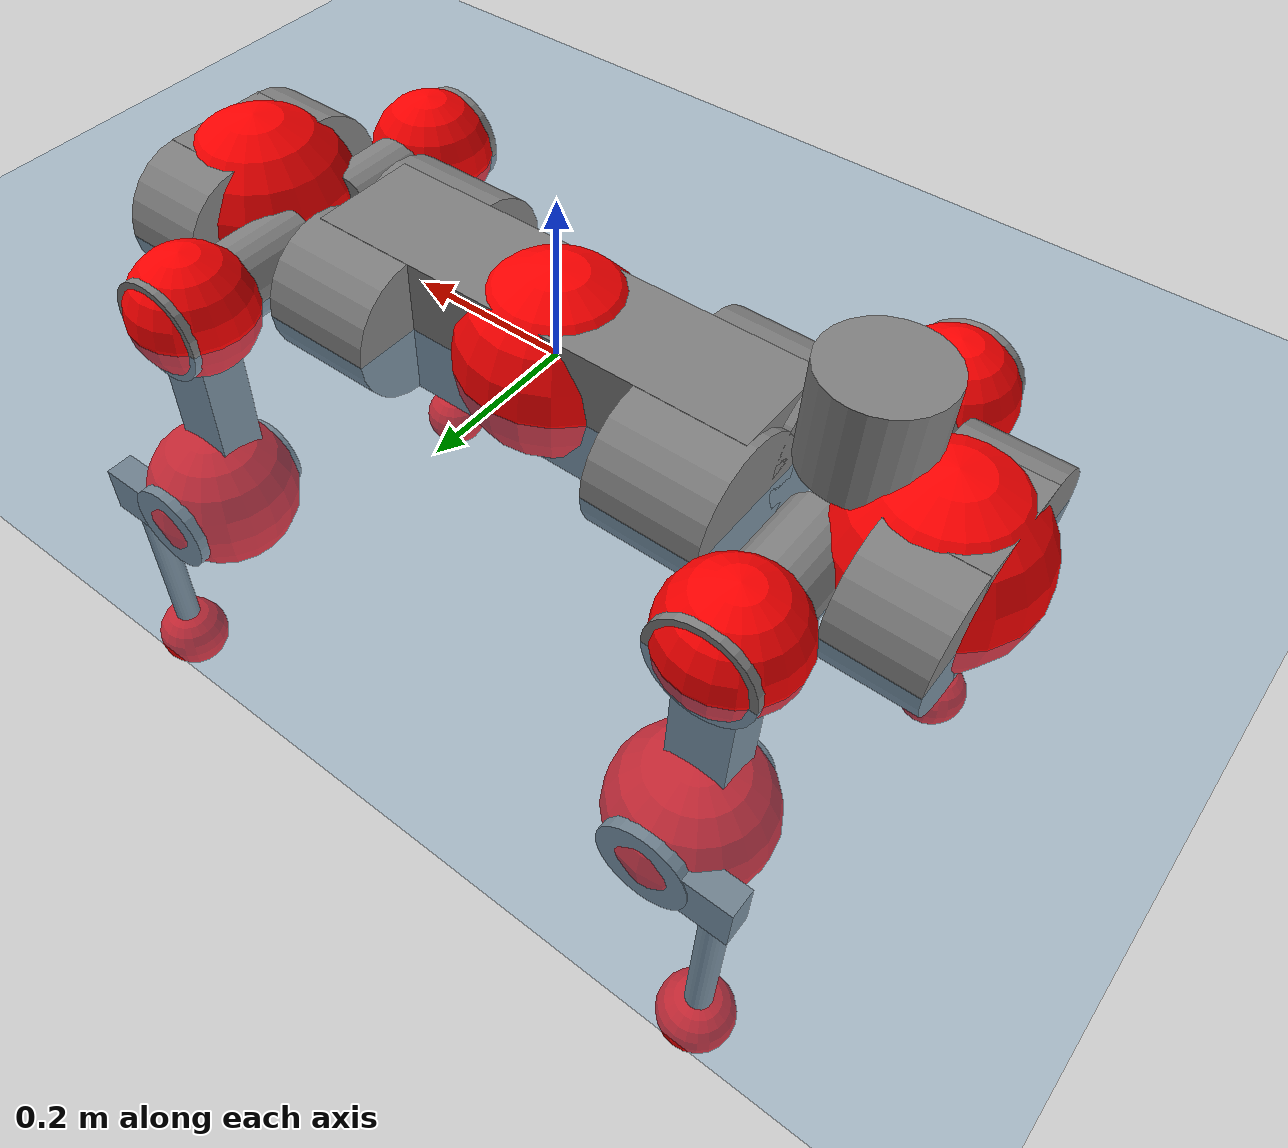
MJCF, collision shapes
<mujoco model="anymal_c">
  <compiler angle="radian" assetdir="assets" balanceinertia="true" inertiafromgeom="false"/>

  <option timestep="0.005" density="1.2" viscosity="2e-05"/>

  <size nkey="1"/>

  <visual>
    <quality shadowsize="8192"/>
    <map shadowclip="0.5"/>
  </visual>

  <default>
    <default class="/">
      <material specular="0" shininess="0.25"/>
      <geom contype="0" conaffinity="0" group="1" solref="-1000 -80"/>
      <site size="0.01 0.005 0.005" group="5"/>
      <general forcelimited="true" forcerange="-80 80" biastype="affine" gainprm="80" biasprm="0 -80 -2"/>
      <default class="anymal_c">
        <joint armature="0.01" damping="0.01" frictionloss="0.1"/>
        <default class="visual">
          <geom type="mesh" group="2"/>
          <default class="visual_zflip"/>
        </default>
        <default class="collision">
          <geom type="cylinder" group="3"/>
          <default class="foot">
            <geom size="0.03 0 0" type="sphere" condim="6" priority="1" friction="0.8 0.02 0.01" solimp="0.015 1 0.03"/>
          </default>
        </default>
      </default>
      <default class="reward_collision_sphere">
        <geom group="5" rgba="1 0 0 1"/>
      </default>
    </default>
  </default>

  <asset>
    <texture type="skybox" colorspace="auto" name="//unnamed_texture_0" builtin="gradient" rgb1="0.95 0.95 0.95" rgb2="0.95 0.95 0.95" width="100" height="600"/>
    <texture type="2d" colorspace="auto" name="texplane" builtin="checker" rgb1="0.345 0.575 0.748" rgb2="0.345 0.575 0.748" markrgb="1 1 1" width="512" height="512"/>
    <texture type="2d" colorspace="linear" name="base" file="base.png"/>
    <texture type="2d" colorspace="linear" name="top_shell" file="top_shell.png"/>
    <texture type="2d" colorspace="linear" name="bottom_shell" file="bottom_shell.png"/>
    <texture type="2d" colorspace="linear" name="remote" file="remote.png"/>
    <texture type="2d" colorspace="linear" name="hatch" file="hatch.png"/>
    <texture type="2d" colorspace="linear" name="handle" file="handle.png"/>
    <texture type="2d" colorspace="linear" name="face" file="face.png"/>
    <texture type="2d" colorspace="linear" name="battery" file="battery.png"/>
    <texture type="2d" colorspace="linear" name="lidar_cage" file="lidar_cage.png"/>
    <texture type="2d" colorspace="linear" name="depth_camera" file="depth_camera.png"/>
    <texture type="2d" colorspace="linear" name="wide_angle_camera" file="wide_angle_camera.png"/>
    <texture type="2d" colorspace="linear" name="lidar" file="lidar.png"/>
    <texture type="2d" colorspace="linear" name="drive" file="drive.png"/>
    <texture type="2d" colorspace="linear" name="hip_l" file="hip_l.png"/>
    <texture type="2d" colorspace="linear" name="shank_l" file="shank_l.png"/>
    <texture type="2d" colorspace="linear" name="foot" file="foot.png"/>
    <texture type="2d" colorspace="linear" name="thigh" file="thigh.png"/>
    <texture type="2d" colorspace="linear" name="shank_r" file="shank_r.png"/>
    <texture type="2d" colorspace="linear" name="hip_r" file="hip_r.png"/>
    <material name="MatPlane" class="/" texture="texplane" texuniform="true" texrepeat="2 2" specular="0.9" shininess="0.5"/>
    <material name="black_plastic" class="/" rgba="0.007 0.007 0.007 1"/>
    <material name="green" class="/" rgba="0.052 0.178 0.033 1"/>
    <material name="red" class="/" rgba="0.178 0.006 0.005 1"/>
    <material name="yellow" class="/" rgba="0.178 0.119 0.006 1"/>
    <material name="lwl" class="/" rgba="0.8 0.8 0.8 1"/>
    <material name="base" class="/" texture="base"/>
    <material name="top_shell" class="/" texture="top_shell"/>
    <material name="bottom_shell" class="/" texture="bottom_shell"/>
    <material name="hip_l" class="/" texture="hip_l"/>
    <material name="thigh" class="/" texture="thigh"/>
    <material name="shank_l" class="/" texture="shank_l"/>
    <material name="foot" class="/" texture="foot"/>
    <material name="hip_r" class="/" texture="hip_r"/>
    <material name="shank" class="/" texture="shank_r"/>
    <material name="hatch" class="/" texture="hatch"/>
    <material name="remote" class="/" texture="remote"/>
    <material name="handle" class="/" texture="handle"/>
    <material name="face" class="/" texture="face"/>
    <material name="depth_camera" class="/" texture="depth_camera"/>
    <material name="wide_angle_camera" class="/" texture="wide_angle_camera"/>
    <material name="battery" class="/" texture="battery"/>
    <material name="lidar_cage" class="/" texture="lidar_cage"/>
    <material name="lidar" class="/" texture="lidar"/>
    <material name="drive" class="/" texture="drive"/>
    <mesh name="base_0" class="/" file="base_0.obj"/>
    <mesh name="base_1" class="/" file="base_1.obj"/>
    <mesh name="base_2" class="/" file="base_2.obj"/>
    <mesh name="base_3" class="/" file="base_3.obj"/>
    <mesh name="base_4" class="/" file="base_4.obj"/>
    <mesh name="base_5" class="/" file="base_5.obj"/>
    <mesh name="top_shell" class="/" file="top_shell.obj"/>
    <mesh name="bottom_shell" class="/" file="bottom_shell.obj"/>
    <mesh name="remote" class="/" file="remote.obj"/>
    <mesh name="handle" class="/" file="handle.obj"/>
    <mesh name="face" class="/" file="face.obj"/>
    <mesh name="wide_angle_camera" class="/" file="wide_angle_camera.obj"/>
    <mesh name="depth_camera" class="/" file="depth_camera.obj"/>
    <mesh name="battery" class="/" file="battery.obj"/>
    <mesh name="lidar_cage" class="/" file="lidar_cage.obj"/>
    <mesh name="lidar" class="/" file="lidar.obj"/>
    <mesh name="drive" class="/" file="drive.obj"/>
    <mesh name="hip_l" class="/" file="hip_l.obj"/>
    <mesh name="thigh" class="/" file="thigh.obj"/>
    <mesh name="shank_l" class="/" file="shank_l.obj"/>
    <mesh name="foot" class="/" file="foot.obj"/>
    <mesh name="hip_r" class="/" file="hip_r.obj"/>
    <mesh name="hatch" class="/" file="hatch.obj"/>
    <mesh name="shank_r" class="/" file="shank_r.obj"/>
  </asset>

  <worldbody>
    <geom name="floor" class="/" size="100 100 0.125" type="plane" group="0" material="MatPlane"/>
    <light name="toplight_shadow" class="/" pos="0 0 5" dir="0.0990148 0.0990148 -0.990148" type="directional" ambient="0.04 0.04 0.04" diffuse="0.55 0.55 0.55" specular="0.12 0.12 0.12"/>
    <light name="toplight_fill" class="/" pos="0 0 5" dir="0.0990148 0.0990148 -0.990148" type="directional" castshadow="false" ambient="0.04 0.04 0.04" diffuse="0.3 0.3 0.3" specular="0.08 0.08 0.08"/>
    <body name="trunk" childclass="anymal_c" pos="5.72424e-05 4.06253e-05 0.000860323" quat="1 -1.95032e-06 -1.51634e-06 3.46569e-05">
      <inertial pos="0.0022185 -1.53994e-05 0.0480419" quat="0.500083 0.499996 0.500185 0.499736" mass="18.8395" diaginertia="0.7682 0.471053 0.211529"/>
      <joint name="//unnamed_joint_0" type="free" armature="0" damping="0" frictionloss="0"/>
      <geom name="//unnamed_geom_1" class="visual" material="green" mesh="base_0"/>
      <geom name="//unnamed_geom_2" class="visual" material="yellow" mesh="base_1"/>
      <geom name="//unnamed_geom_3" class="visual" material="red" mesh="base_2"/>
      <geom name="//unnamed_geom_4" class="visual" material="black_plastic" mesh="base_3"/>
      <geom name="//unnamed_geom_5" class="visual" material="lwl" mesh="base_4"/>
      <geom name="//unnamed_geom_6" class="visual" material="base" mesh="base_5"/>
      <geom name="trunk_1" class="collision" size="0.287531 0.0694041 0.0892338" type="box"/>
      <geom name="trunk_2" class="collision" size="0.0892338 0.0718828" pos="0.225514 0.0661298 0" quat="0.707107 0 0.707107 0"/>
      <geom name="trunk_3" class="collision" size="0.0892338 0.0718828" pos="-0.225514 0.0661298 0" quat="0.707107 0 0.707107 0"/>
      <geom name="trunk_4" class="collision" size="0.0892338 0.0718828" pos="0.225514 -0.0661298 0" quat="0.707107 0 0.707107 0"/>
      <geom name="trunk_5" class="collision" size="0.0892338 0.0718828" pos="-0.225514 -0.0661298 0" quat="0.707107 0 0.707107 0"/>
      <geom name="//unnamed_geom_12" class="visual" material="top_shell" mesh="top_shell"/>
      <geom name="//unnamed_geom_13" class="visual" material="bottom_shell" mesh="bottom_shell"/>
      <geom name="//unnamed_geom_14" class="visual" material="remote" mesh="remote"/>
      <geom name="//unnamed_geom_15" class="visual" material="handle" mesh="handle"/>
      <geom name="//unnamed_geom_16" class="visual" pos="0.429773 0 0" quat="1 0 0 0" material="face" mesh="face"/>
      <geom name="trunk_6" class="collision" size="0.0545318 0.0694041 0.0892338" pos="0.486799 0 0" type="box"/>
      <geom name="//unnamed_geom_18" class="collision" size="0.0892338 0.0545318" pos="0.486799 0.0661298 0" quat="0.707107 0 0.707107 0"/>
      <geom name="//unnamed_geom_19" class="collision" size="0.0892338 0.0545318" pos="0.486799 -0.0661298 0" quat="0.707107 0 0.707107 0"/>
      <geom name="//unnamed_geom_20" class="visual" pos="0.478658 0 -0.0286588" quat="0.965926 0 0.258819 0" material="depth_camera" mesh="depth_camera"/>
      <geom name="//unnamed_geom_21" class="visual" pos="0.531902 0 0.0148638" material="wide_angle_camera" mesh="wide_angle_camera"/>
      <geom name="//unnamed_geom_22" class="visual_zflip" pos="-0.429773 0 0" quat="0 0 0 1" material="face" mesh="face"/>
      <geom name="trunk_7" class="collision" size="0.0545318 0.0694041 0.0892338" pos="-0.486799 0 0" quat="0 0 0 1" type="box"/>
      <geom name="//unnamed_geom_24" class="collision" size="0.0892338 0.0545318" pos="-0.486799 -0.0661298 0" quat="0 -0.707107 0 0.707107"/>
      <geom name="//unnamed_geom_25" class="collision" size="0.0892338 0.0545318" pos="-0.486799 0.0661298 0" quat="0 -0.707107 0 0.707107"/>
      <geom name="//unnamed_geom_26" class="visual" pos="-0.478658 0 -0.0286588" quat="0 -0.258819 0 0.965926" material="depth_camera" mesh="depth_camera"/>
      <geom name="//unnamed_geom_27" class="visual_zflip" pos="-0.531902 0 0.0148638" quat="0 0 0 1" material="wide_angle_camera" mesh="wide_angle_camera"/>
      <geom name="//unnamed_geom_28" class="visual" material="battery" mesh="battery"/>
      <geom name="//unnamed_geom_29" class="visual" pos="0 0.0710218 0.0291778" quat="0.683013 -0.183013 0.183013 0.683013" material="depth_camera" mesh="depth_camera"/>
      <geom name="//unnamed_geom_30" class="visual" pos="0 -0.0710218 0.0291778" quat="0.683013 0.183013 0.183013 -0.683013" material="depth_camera" mesh="depth_camera"/>
      <geom name="//unnamed_geom_31" class="visual" pos="-0.377412 0 0.0729783" quat="1 0 0 0" material="lidar_cage" mesh="lidar_cage"/>
      <geom name="trunk_8" class="collision" size="0.0694041 0.0594892" pos="-0.377412 0 0.132553"/>
      <geom name="//unnamed_geom_33" class="visual" pos="-0.377412 -3.61974e-05 0.141191" quat="0.707107 0 0 -0.707107" material="lidar" mesh="lidar"/>
      <geom name="//unnamed_geom_34" class="visual" pos="0.31095 0.0982671 -8.31308e-10" quat="0.258819 0.965926 0 0" material="drive" mesh="drive"/>
      <geom name="//unnamed_geom_35" class="visual" pos="0.31095 -0.0982671 8.31308e-10" quat="0.258819 -0.965926 0 0" material="drive" mesh="drive"/>
      <geom name="//unnamed_geom_36" class="visual" pos="-0.31095 0.0982671 8.31308e-10" quat="0 0 0.965926 -0.258819" material="drive" mesh="drive"/>
      <geom name="//unnamed_geom_37" class="visual" pos="-0.31095 -0.0982671 -8.31308e-10" quat="0 0 -0.965926 -0.258819" material="drive" mesh="drive"/>
      <geom name="//unnamed_geom_38" class="visual" pos="0.120274 0 0.0724819" quat="1 0 0 0" material="hatch" mesh="hatch"/>
      <geom name="//unnamed_geom_39" class="reward_collision_sphere" size="0.118978"/>
      <geom name="//unnamed_geom_40" class="reward_collision_sphere" size="0.118978" pos="0.466581 0 0"/>
      <geom name="//unnamed_geom_41" class="reward_collision_sphere" size="0.118978" pos="-0.466581 0 0"/>
      <site name="imu" pos="0.258819 0.0114826 0.0460916" size="0.00991487"/>
      <camera name="track" pos="0 -1.88942 0" quat="0.707107 0.707107 0 0" mode="trackcom"/>
      <camera name="ego_camera" pos="0.466581 0 -0.0397161" quat="-0.5 -0.5 0.5 0.5"/>
      <body name="LF_HIP" pos="0.311146 0.098867 -3.93529e-06" quat="0.258881 0.965909 0.000183247 1.8782e-05">
        <inertial pos="0.0592386 -0.0143394 -0.00747655" quat="-0.127582 0.709745 -0.135156 0.679498" mass="2.6811" diaginertia="0.0069793 0.00371339 0.00312933"/>
        <joint name="LF_HAA" pos="0 0 0" axis="0.999999 0.00129078 -0.000853626" range="-0.714554 0.491859" armature="0.00953026" damping="0.00700406" frictionloss="0.101816"/>
        <geom name="//unnamed_geom_42" class="visual" pos="0 -4.89021e-05 8.03213e-06" quat="0.258819 -0.965926 0 0" material="hip_l" mesh="hip_l"/>
        <geom name="//unnamed_geom_43" class="visual" pos="0.0621071 -0.07406 -0.043115" quat="0.183013 -0.683013 0.683013 0.183013" material="drive" mesh="drive"/>
        <geom name="//unnamed_geom_44" class="collision" size="0.0495743 0.0694041" pos="0.0621071 -0.0112986 -0.00685599" quat="-0.353553 -0.612372 0.612372 -0.353553"/>
        <body name="LF_THIGH" pos="0.0624777 -0.0689335 -0.0420196" quat="0.183018 -0.682986 0.683033 0.18303">
          <inertial pos="0.0319941 0.000214352 -0.243185" quat="0.993139 -0.00539456 -0.0806391 0.0845211" mass="3.02043" diaginertia="0.0363788 0.0223614 0.00403048"/>
          <joint name="LF_HFE" pos="0 0 0" axis="1 -2.95392e-05 0.000183802" stiffness="0.0062165" range="-3.12592 3.13301" armature="0.0101455" damping="0.00788772" frictionloss="0.0979813"/>
          <geom name="//unnamed_geom_45" class="visual" pos="0.00183312 2.88858e-06 0" quat="0.707107 0 0 -0.707107" material="thigh" mesh="thigh"/>
          <geom name="//unnamed_geom_46" class="collision" size="0.0644466 0.0396595" pos="0.0414738 0 0" quat="0.5 0.5 -0.5 -0.5"/>
          <geom name="//unnamed_geom_47" class="collision" size="0.0371808 0.0297446 0.140111" pos="0.0311054 0 -0.140311" quat="0.707107 0 0 -0.707107" type="box"/>
          <geom name="//unnamed_geom_48" class="visual" pos="0.103996 0 -0.282977" quat="1 0 0 0" material="drive" mesh="drive"/>
          <geom name="//unnamed_geom_49" class="collision" size="0.0495743 0.0694041" pos="0.0314164 0 -0.282977" quat="0.707107 0 0.707107 0"/>
          <geom name="//unnamed_geom_50" class="reward_collision_sphere" size="0.0793189" pos="0.0259212 0 0"/>
          <body name="LF_SHANK" pos="0.103835 -0.0011368 -0.28392" quat="1 9.44661e-06 3.44974e-05 1.384e-05">
            <inertial pos="0.00592027 -0.0577927 -0.0801301" quat="0.992939 -0.115899 -0.000751513 -0.0252647" mass="0.578732" diaginertia="0.0121841 0.00698395 0.00108703"/>
            <joint name="LF_KFE" pos="0 0 0" axis="0.999991 -0.00429699 0.000252816" range="-3.14148 3.13322" armature="0.00992338" damping="0.00602402" frictionloss="0.103379"/>
            <geom name="//unnamed_geom_51" class="visual" pos="0.000597742 0.00318719 0" quat="0.707107 0 0 -0.707107" material="shank_l" mesh="shank_l"/>
            <geom name="LF_kfe_act" class="collision" size="0.0594892 0.0198297" pos="0.0207369 0 0" quat="0.5 0.5 -0.5 -0.5"/>
            <geom name="//unnamed_geom_53" class="collision" size="0.0570095 0.0334627 0.0188382" pos="0.0207369 -0.0543199 0" quat="0.5 0.5 -0.5 -0.5" type="box"/>
            <geom name="//unnamed_geom_54" class="visual" pos="0.0135307 -0.0820602 -0.335571" quat="0.382683 0 0 -0.92388" material="foot" mesh="foot"/>
            <geom name="LF_calf" class="collision" size="0.017351 0.140049" pos="0.0135308 -0.0830874 -0.167786" quat="0.707107 0 0 -0.707107"/>
            <geom name="LF_foot" class="foot" size="0.0304909" pos="0.0135308 -0.0830874 -0.313231" quat="0.707107 0 0 -0.707107"/>
            <geom name="//unnamed_geom_57" class="reward_collision_sphere" size="0.0991487" pos="-0.0518423 0 0"/>
            <geom name="//unnamed_geom_58" class="reward_collision_sphere" size="0.0495743" pos="0.0135308 -0.0830874 -0.313231"/>
            <site name="LF_foot" class="foot" pos="0.0135308 -0.0830874 -0.313231" quat="0.707107 0 0 -0.707107" size="0.00991487"/>
          </body>
        </body>
      </body>
      <body name="RF_HIP" pos="0.311448 -0.0980484 0.000718628" quat="0.25872 -0.965952 -0.000242166 -0.000302166">
        <inertial pos="0.0590046 0.0150798 -0.00861695" quat="0.135243 0.67881 0.128335 0.710251" mass="2.73002" diaginertia="0.00706632 0.00373779 0.00317668"/>
        <joint name="RF_HAA" pos="0 0 0" axis="0.999999 0.000599222 0.000822229" range="-0.507855 0.723884" armature="0.00984099" damping="0.0122452" frictionloss="0.103482"/>
        <geom name="//unnamed_geom_59" class="visual" pos="0 4.89017e-05 8.03211e-06" quat="0.258819 0.965926 0 0" material="hip_r" mesh="hip_r"/>
        <geom name="//unnamed_geom_60" class="visual" pos="0.0621071 0.07406 -0.043115" quat="0.183013 0.683013 0.683013 -0.183013" material="drive" mesh="drive"/>
        <geom name="//unnamed_geom_61" class="collision" size="0.0495743 0.0694041" pos="0.0621071 0.0112986 -0.00685599" quat="-0.353553 0.612372 0.612372 0.353553"/>
        <body name="RF_THIGH" pos="0.0629403 0.0679714 -0.0419967" quat="0.183007 0.683013 0.68301 -0.183025">
          <inertial pos="0.0321378 -0.000108827 -0.243759" quat="0.992805 -0.00578024 -0.0805957 0.0883739" mass="3.03439" diaginertia="0.0365235 0.0227236 0.00408553"/>
          <joint name="RF_HFE" pos="0 0 0" axis="0.999999 -0.00128825 0.000635262" stiffness="0.00577354" range="-3.13018 3.14052" armature="0.0100166" damping="0.0109428" frictionloss="0.0967549"/>
          <geom name="//unnamed_geom_62" class="visual" pos="0.00183312 2.88858e-06 0" quat="0.707107 0 0 -0.707107" material="thigh" mesh="thigh"/>
          <geom name="//unnamed_geom_63" class="collision" size="0.0644466 0.0396595" pos="0.0414738 0 0" quat="0.5 0.5 0.5 0.5"/>
          <geom name="//unnamed_geom_64" class="collision" size="0.0371808 0.0297446 0.140111" pos="0.0311054 0 -0.140311" quat="0.707107 0 0 0.707107" type="box"/>
          <geom name="//unnamed_geom_65" class="visual" pos="0.103996 0 -0.282977" quat="1 0 0 0" material="drive" mesh="drive"/>
          <geom name="//unnamed_geom_66" class="collision" size="0.0495743 0.0694041" pos="0.0314164 0 -0.282977" quat="0.707107 0 0.707107 0"/>
          <geom name="//unnamed_geom_67" class="reward_collision_sphere" size="0.0793189" pos="0.0259212 0 0"/>
          <body name="RF_SHANK" pos="0.103681 0.000611485 -0.283148" quat="1 -0.000122273 2.44584e-05 3.84147e-05">
            <inertial pos="0.00577303 0.0574227 -0.0794681" quat="0.992893 0.115801 -0.00133552 0.0274334" mass="0.56702" diaginertia="0.0120333 0.00692639 0.00107594"/>
            <joint name="RF_KFE" pos="0 0 0" axis="0.999978 0.00496118 -0.00429281" stiffness="0.00108778" range="-3.1295 3.14739" armature="0.0100188" damping="0.00877997" frictionloss="0.0960126"/>
            <geom name="//unnamed_geom_68" class="visual" pos="0.000597739 -0.00318718 0" quat="0.707107 0 0 0.707107" material="shank" mesh="shank_r"/>
            <geom name="RF_kfe_act" class="collision" size="0.0594892 0.0198297" pos="0.0207369 0 0" quat="0.5 0.5 0.5 0.5"/>
            <geom name="//unnamed_geom_70" class="collision" size="0.0570095 0.0334627 0.0188382" pos="0.0207369 0.0543199 0" quat="0.5 0.5 0.5 0.5" type="box"/>
            <geom name="//unnamed_geom_71" class="visual" pos="0.013531 0.0820602 -0.335571" quat="0.382683 0 0 0.92388" material="foot" mesh="foot"/>
            <geom name="RF_calf" class="collision" size="0.017351 0.140049" pos="0.0135308 0.0830874 -0.167786" quat="0.707107 0 0 0.707107"/>
            <geom name="RF_foot" class="foot" size="0.0299485" pos="0.0135308 0.0830874 -0.313231" quat="0.707107 0 0 0.707107"/>
            <geom name="//unnamed_geom_74" class="reward_collision_sphere" size="0.0991487" pos="-0.0518423 0 0"/>
            <geom name="//unnamed_geom_75" class="reward_collision_sphere" size="0.0495743" pos="0.0135308 0.0830874 -0.313231"/>
            <site name="RF_foot" class="foot" pos="0.0135308 0.0830874 -0.313231" quat="0.707107 0 0 0.707107" size="0.00991487"/>
          </body>
        </body>
      </body>
      <body name="LH_HIP" pos="-0.31086 0.0981421 0.000142222" quat="-9.04713e-05 -1.01047e-05 0.965946 -0.258743">
        <inertial pos="0.0594052 0.0146826 -0.00807446" quat="0.131592 0.679361 0.130118 0.710085" mass="2.68347" diaginertia="0.00703464 0.00365949 0.00318636"/>
        <joint name="LH_HAA" pos="0 0 0" axis="0.999984 -0.00291746 0.00481217" range="-0.484295 0.731016" armature="0.00996515" damping="0.0133413" frictionloss="0.0961286"/>
        <geom name="//unnamed_geom_76" class="visual" pos="0 4.89017e-05 8.03211e-06" quat="-0.258819 -0.965926 0 0" material="hip_r" mesh="hip_r"/>
        <geom name="//unnamed_geom_77" class="visual" pos="0.0621071 0.07406 -0.043115" quat="0.183013 0.683013 0.683013 -0.183013" material="drive" mesh="drive"/>
        <geom name="//unnamed_geom_78" class="collision" size="0.0495743 0.0694041" pos="0.0621071 0.0112986 -0.00685599" quat="-0.353553 0.612372 0.612372 0.353553"/>
        <body name="LH_THIGH" pos="0.061424 0.0696057 -0.0420053" quat="0.182834 0.683065 0.683054 -0.182844">
          <inertial pos="0.0317892 0.000782058 -0.243719" quat="0.992749 -0.00522501 -0.0808534 0.0887938" mass="3.01562" diaginertia="0.0360942 0.0226938 0.00401059"/>
          <joint name="LH_HFE" pos="0 0 0" axis="1 -0.000344493 -0.000189023" range="-3.14203 3.13704" armature="0.0099624" damping="0.00657448" frictionloss="0.0989036"/>
          <geom name="//unnamed_geom_79" class="visual" pos="0.00183312 2.88858e-06 0" quat="0.707107 0 0 -0.707107" material="thigh" mesh="thigh"/>
          <geom name="//unnamed_geom_80" class="collision" size="0.0644466 0.0396595" pos="0.0414738 0 0" quat="0.5 0.5 -0.5 -0.5"/>
          <geom name="//unnamed_geom_81" class="collision" size="0.0371808 0.0297446 0.140111" pos="0.0311054 0 -0.140311" quat="0.707107 0 0 -0.707107" type="box"/>
          <geom name="//unnamed_geom_82" class="visual" pos="0.103996 0 -0.282977" quat="1 0 0 0" material="drive" mesh="drive"/>
          <geom name="//unnamed_geom_83" class="collision" size="0.0495743 0.0694041" pos="0.0314164 0 -0.282977" quat="0.707107 0 0.707107 0"/>
          <geom name="//unnamed_geom_84" class="reward_collision_sphere" size="0.0793189" pos="0.0259212 0 0"/>
          <body name="LH_SHANK" pos="0.103694 -0.000376769 -0.283289" quat="1 0.000212605 7.4337e-05 -0.000381154">
            <inertial pos="0.00492986 0.0576406 -0.0791561" quat="0.992928 0.115967 -0.00121926 0.0253974" mass="0.58171" diaginertia="0.0122583 0.00701318 0.00110276"/>
            <joint name="LH_KFE" pos="0 0 0" axis="0.999996 -0.00277926 0.000565948" range="-3.14654 3.12294" armature="0.00999303" damping="0.00525039" frictionloss="0.0966715"/>
            <geom name="//unnamed_geom_85" class="visual" pos="0.000597739 -0.00318718 0" quat="-0.707107 0 0 -0.707107" material="shank" mesh="shank_r"/>
            <geom name="LH_kfe_act" class="collision" size="0.0594892 0.0198297" pos="0.0207369 0 0" quat="0.5 0.5 -0.5 -0.5"/>
            <geom name="//unnamed_geom_87" class="collision" size="0.0570095 0.0334627 0.0188382" pos="0.0207369 0.0543199 0" quat="0.5 0.5 -0.5 -0.5" type="box"/>
            <geom name="//unnamed_geom_88" class="visual" pos="0.013531 0.0820602 -0.335571" quat="-0.382683 0 0 -0.92388" material="foot" mesh="foot"/>
            <geom name="LH_calf" class="collision" size="0.017351 0.140049" pos="0.0135308 0.0830874 -0.167786" quat="0.707107 0 0 -0.707107"/>
            <geom name="LH_foot" class="foot" size="0.0307935" pos="0.0135308 0.0830874 -0.313231" quat="0.707107 0 0 -0.707107"/>
            <geom name="//unnamed_geom_91" class="reward_collision_sphere" size="0.0991487" pos="-0.0518423 0 0"/>
            <geom name="//unnamed_geom_92" class="reward_collision_sphere" size="0.0495743" pos="0.0135308 0.0830874 -0.313231"/>
            <site name="LH_foot" class="foot" pos="0.0135308 0.0830874 -0.313231" quat="0.707107 0 0 -0.707107" size="0.00991487"/>
          </body>
        </body>
      </body>
      <body name="RH_HIP" pos="-0.310923 -0.0990605 0.000747804" quat="4.03168e-05 -4.30338e-05 -0.965893 -0.25894">
        <inertial pos="0.0592191 -0.015044 -0.00803214" quat="-0.129833 0.710504 -0.137039 0.677899" mass="2.72459" diaginertia="0.00701969 0.00376709 0.00321128"/>
        <joint name="RH_HAA" pos="0 0 0" axis="1 0.000272211 -0.000882481" range="-0.715034 0.501484" armature="0.0100863" damping="0.0107122" frictionloss="0.094899"/>
        <geom name="//unnamed_geom_93" class="visual" pos="0 -4.89021e-05 8.03213e-06" quat="-0.258819 0.965926 0 0" material="hip_l" mesh="hip_l"/>
        <geom name="//unnamed_geom_94" class="visual" pos="0.0621071 -0.07406 -0.043115" quat="-0.183013 0.683013 -0.683013 -0.183013" material="drive" mesh="drive"/>
        <geom name="//unnamed_geom_95" class="collision" size="0.0495743 0.0694041" pos="0.0621071 -0.0112986 -0.00685599" quat="0.353553 0.612372 -0.612372 0.353553"/>
        <body name="RH_THIGH" pos="0.0619648 -0.0687345 -0.0423518" quat="-0.183012 0.683013 -0.683012 -0.183013">
          <inertial pos="0.0321656 0.000636979 -0.24456" quat="0.992866 -0.00305376 -0.0832717 0.0852826" mass="2.96785" diaginertia="0.0360303 0.0222462 0.00401618"/>
          <joint name="RH_HFE" pos="0 0 0" axis="0.999986 -0.00524476 0.000382794" range="-3.1447 3.14592" armature="0.0102508" damping="0.00808832" frictionloss="0.100788"/>
          <geom name="//unnamed_geom_96" class="visual" pos="0.00183312 2.88858e-06 0" quat="0.707107 0 0 -0.707107" material="thigh" mesh="thigh"/>
          <geom name="//unnamed_geom_97" class="collision" size="0.0644466 0.0396595" pos="0.0414738 0 0" quat="0.5 0.5 0.5 0.5"/>
          <geom name="//unnamed_geom_98" class="collision" size="0.0371808 0.0297446 0.140111" pos="0.0311054 0 -0.140311" quat="0.707107 0 0 0.707107" type="box"/>
          <geom name="//unnamed_geom_99" class="visual" pos="0.103996 0 -0.282977" quat="1 0 0 0" material="drive" mesh="drive"/>
          <geom name="//unnamed_geom_100" class="collision" size="0.0495743 0.0694041" pos="0.0314164 0 -0.282977" quat="0.707107 0 0.707107 0"/>
          <geom name="//unnamed_geom_101" class="reward_collision_sphere" size="0.0793189" pos="0.0259212 0 0"/>
          <body name="RH_SHANK" pos="0.104201 0.00110909 -0.282956" quat="1 0.000339934 -4.70674e-05 -6.68516e-05">
            <inertial pos="0.00516583 -0.0578307 -0.0801163" quat="0.993012 -0.115094 -0.000302506 -0.0260683" mass="0.578769" diaginertia="0.0123231 0.00697054 0.00109767"/>
            <joint name="RH_KFE" pos="0 0 0" axis="0.999985 0.00123258 -0.00542422" range="-3.13806 3.12941" armature="0.00998083" damping="0.008711" frictionloss="0.0997202"/>
            <geom name="//unnamed_geom_102" class="visual" pos="0.000597742 0.00318719 0" quat="0.707107 0 0 -0.707107" material="shank_l" mesh="shank_l"/>
            <geom name="RH_kfe_act" class="collision" size="0.0594892 0.0198297" pos="0.0207369 0 0" quat="0.5 0.5 0.5 0.5"/>
            <geom name="//unnamed_geom_104" class="collision" size="0.0570095 0.0334627 0.0188382" pos="0.0207369 -0.0543199 0" quat="0.5 0.5 0.5 0.5" type="box"/>
            <geom name="//unnamed_geom_105" class="visual" pos="0.0135307 -0.0820602 -0.335571" quat="0.382683 0 0 -0.92388" material="foot" mesh="foot"/>
            <geom name="RH_calf" class="collision" size="0.017351 0.140049" pos="0.0135308 -0.0830874 -0.167786" quat="0.707107 0 0 0.707107"/>
            <geom name="RH_foot" class="foot" size="0.0267383" pos="0.0135308 -0.0830874 -0.313231" quat="0.707107 0 0 0.707107"/>
            <geom name="//unnamed_geom_108" class="reward_collision_sphere" size="0.0991487" pos="-0.0518423 0 0"/>
            <geom name="//unnamed_geom_109" class="reward_collision_sphere" size="0.0495743" pos="0.0135308 -0.0830874 -0.313231"/>
            <site name="RH_foot" class="foot" pos="0.0135308 -0.0830874 -0.313231" quat="0.707107 0 0 0.707107" size="0.00991487"/>
          </body>
        </body>
      </body>
    </body>
  </worldbody>

  <contact>
    <pair class="/" geom1="floor" geom2="LF_foot" name="//unnamed_contact_0"/>
    <pair class="/" geom1="floor" geom2="RF_foot" name="//unnamed_contact_1"/>
    <pair class="/" geom1="floor" geom2="LH_foot" name="//unnamed_contact_2"/>
    <pair class="/" geom1="floor" geom2="RH_foot" name="//unnamed_contact_3"/>
  </contact>

  <actuator>
    <general name="LF_HAA" class="/" joint="LF_HAA" forcerange="-81.912 81.912" gainprm="79.6261" biasprm="0 -79.6261 -1.90925"/>
    <general name="LF_HFE" class="/" joint="LF_HFE" forcerange="-77.6843 77.6843" gainprm="79.6261" biasprm="0 -79.6261 -1.90925"/>
    <general name="LF_KFE" class="/" joint="LF_KFE" forcerange="-80.9015 80.9015" gainprm="79.6261" biasprm="0 -79.6261 -1.90925"/>
    <general name="RF_HAA" class="/" joint="RF_HAA" forcerange="-78.5938 78.5938" gainprm="79.6261" biasprm="0 -79.6261 -1.90925"/>
    <general name="RF_HFE" class="/" joint="RF_HFE" forcerange="-79.8666 79.8666" gainprm="79.6261" biasprm="0 -79.6261 -1.90925"/>
    <general name="RF_KFE" class="/" joint="RF_KFE" forcerange="-80.4289 80.4289" gainprm="79.6261" biasprm="0 -79.6261 -1.90925"/>
    <general name="LH_HAA" class="/" joint="LH_HAA" forcerange="-77.1223 77.1223" gainprm="79.6261" biasprm="0 -79.6261 -1.90925"/>
    <general name="LH_HFE" class="/" joint="LH_HFE" forcerange="-79.5713 79.5713" gainprm="79.6261" biasprm="0 -79.6261 -1.90925"/>
    <general name="LH_KFE" class="/" joint="LH_KFE" forcerange="-81.4357 81.4357" gainprm="79.6261" biasprm="0 -79.6261 -1.90925"/>
    <general name="RH_HAA" class="/" joint="RH_HAA" forcerange="-78.4279 78.4279" gainprm="79.6261" biasprm="0 -79.6261 -1.90925"/>
    <general name="RH_HFE" class="/" joint="RH_HFE" forcerange="-79.0389 79.0389" gainprm="79.6261" biasprm="0 -79.6261 -1.90925"/>
    <general name="RH_KFE" class="/" joint="RH_KFE" forcerange="-78.1512 78.1512" gainprm="79.6261" biasprm="0 -79.6261 -1.90925"/>
  </actuator>

  <sensor>
    <gyro site="imu" name="imu_angular_velocity"/>
    <velocimeter site="imu" name="imu_linear_velocity"/>
    <framelinvel objtype="site" objname="LF_foot" name="LF_foot_global_linear_velocity"/>
    <framelinvel objtype="site" objname="RF_foot" name="RF_foot_global_linear_velocity"/>
    <framelinvel objtype="site" objname="LH_foot" name="LH_foot_global_linear_velocity"/>
    <framelinvel objtype="site" objname="RH_foot" name="RH_foot_global_linear_velocity"/>
  </sensor>

  <keyframe>
    <key name="home" qpos="0 0 0.55 1 0 0 0 0 0.4 -0.8 0 -0.4 0.8 0 -0.4 0.8 0 0.4 -0.8"/>
  </keyframe>
</mujoco>
